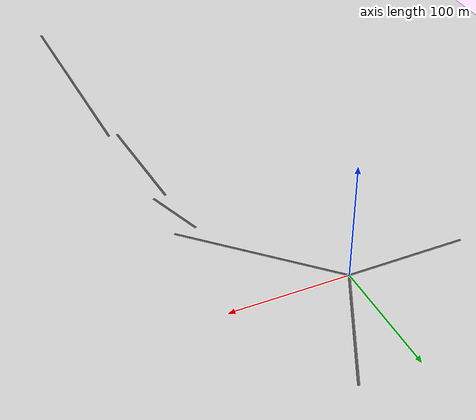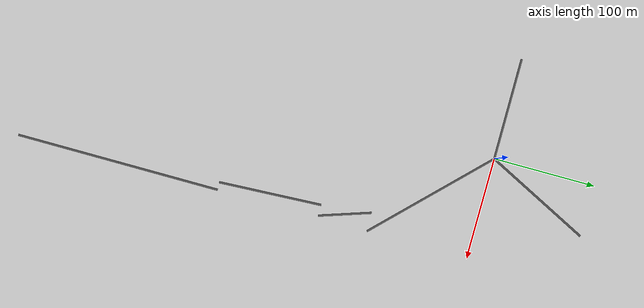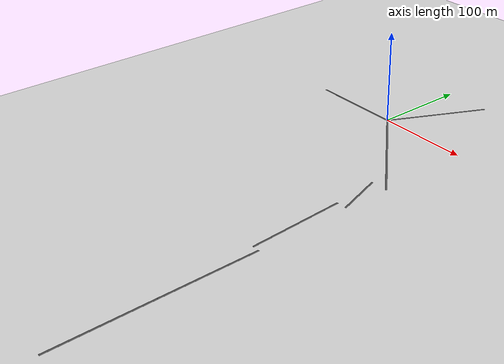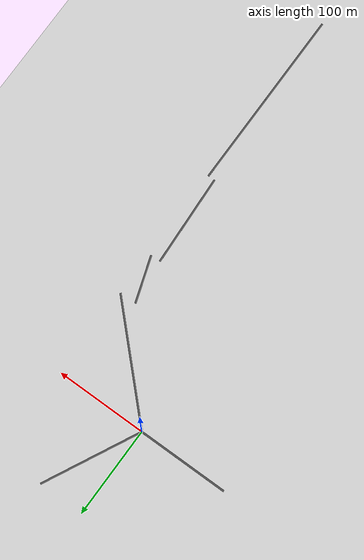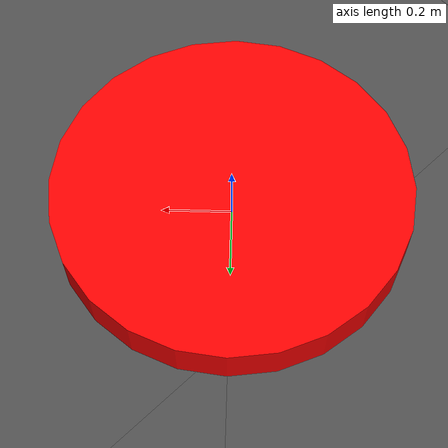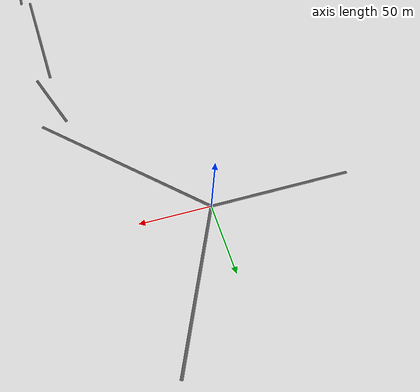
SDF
<?xml version="1.0"?>
<sdf version="1.6">
<world name="travelling_ethiopia">

<!-- PHYSICS -->

<physics type="ode">
  <real_time_update_rate>1000</real_time_update_rate>
  <max_step_size>0.001</max_step_size>
  <real_time_factor>1</real_time_factor>

  <max_contacts>20</max_contacts>
  <gravity>0 0 -9.81</gravity>

  <ode>
    <solver>
      <type>quick</type>
      <iters>150</iters>
      <sor>1.4</sor>
    </solver>

    <constraints>
      <cfm>1e-5</cfm>
      <erp>0.2</erp>
      <contact_max_correcting_vel>100</contact_max_correcting_vel>
      <contact_surface_layer>0.001</contact_surface_layer>
    </constraints>
  </ode>
</physics>

<!-- ENVIRONMENT -->

<light type="directional" name="sun">
  <cast_shadows>true</cast_shadows>
  <pose>0 0 10 0 0 0</pose>
  <diffuse>0.8 0.8 0.8 1</diffuse>
  <specular>0.2 0.2 0.2 1</specular>
  <direction>-0.5 0.5 -1</direction>
</light>

<model name="ground">
  <static>true</static>
  <link name="link">
    <collision name="collision">
      <geometry>
        <plane>
          <normal>0 0 1</normal>
          <size>1000 1000</size>
        </plane>
      </geometry>
    </collision>

    <visual name="visual">
      <geometry>
        <plane>
          <normal>0 0 1</normal>
          <size>1000 1000</size>
        </plane>
      </geometry>
    </visual>

  </link>
</model>

<scene>
  <ambient>0.6 0.6 0.6 1</ambient>
  <background>0.4 0.7 1.0 1</background>
  <shadows>true</shadows>
</scene>

<!-- CITIES (UNCHANGED — ALREADY GOOD) -->

<!-- Addis Ababa -->
<model name="Addis_Ababa">
  <static>true</static>
  <pose>0 0 0 0 0 0</pose>
  <link name="link">
    <visual name="visual">
      <geometry>
        <cylinder><radius>0.5</radius><length>0.3</length></cylinder>
      </geometry>
      <material><ambient>1 0 0 1</ambient></material>
    </visual>
    <collision name="collision">
      <geometry>
        <cylinder><radius>0.5</radius><length>0.3</length></cylinder>
      </geometry>
    </collision>
  </link>
</model>

<!-- Other cities remain same as yours
     (Adama, Ambo, Debre_Birhan, etc.)
-->

<!-- ROAD TEMPLATE (USED FOR ALL ROADS) -->

<!-- ================= ROAD 1 ================= -->
<model name="road_AA_Adama">
  <static>true</static>
  <pose>50 -50 0.01 0 0 -0.785</pose>
  <link name="link">

    <visual name="visual">
      <geometry>
        <box><size>142 2 0.02</size></box>
      </geometry>
      <material>
        <ambient>0.3 0.3 0.3 1</ambient>
      </material>
    </visual>

    <collision name="collision">
      <geometry>
        <box><size>142 2 0.02</size></box>
      </geometry>
      <surface>
        <friction>
          <ode>
            <mu>1.0</mu>
            <mu2>1.0</mu2>
          </ode>
        </friction>
      </surface>
    </collision>

  </link>
</model>

<!-- ================= ROAD 2 ================= -->
<model name="road_AA_Ambo">
  <static>true</static>
  <pose>-50 0 0.01 0 0 0</pose>
  <link name="link">

    <visual name="visual">
      <geometry>
        <box><size>100 2 0.02</size></box>
      </geometry>
      <material>
        <ambient>0.3 0.3 0.3 1</ambient>
      </material>
    </visual>

    <collision name="collision">
      <geometry>
        <box><size>100 2 0.02</size></box>
      </geometry>
      <surface>
        <friction>
          <ode>
            <mu>1.0</mu>
            <mu2>1.0</mu2>
          </ode>
        </friction>
      </surface>
    </collision>

  </link>
</model>

<!-- ================= ROAD 3 ================= -->
<model name="road_AA_DebreBirhan">
  <static>true</static>
  <pose>25 50 0.01 0 0 1.107</pose>
  <link name="link">

    <visual name="visual">
      <geometry>
        <box><size>112 2 0.02</size></box>
      </geometry>
      <material>
        <ambient>0.3 0.3 0.3 1</ambient>
      </material>
    </visual>

    <collision name="collision">
      <geometry>
        <box><size>112 2 0.02</size></box>
      </geometry>
      <surface>
        <friction>
          <ode>
            <mu>1.0</mu>
            <mu2>1.0</mu2>
          </ode>
        </friction>
      </surface>
    </collision>

  </link>
</model>

<!-- ================= ROAD 4 ================= -->
<model name="road_Adama_Batu">
  <static>true</static>
  <pose>90 -125 0.01 0 0 -1.249</pose>
  <link name="link">

    <visual name="visual">
      <geometry>
        <box><size>52 2 0.02</size></box>
      </geometry>
      <material>
        <ambient>0.3 0.3 0.3 1</ambient>
      </material>
    </visual>

    <collision name="collision">
      <geometry>
        <box><size>52 2 0.02</size></box>
      </geometry>
      <surface>
        <friction>
          <ode>
            <mu>1.0</mu>
            <mu2>1.0</mu2>
          </ode>
        </friction>
      </surface>
    </collision>

  </link>
</model>

<!-- ================= ROAD 5 ================= -->
<model name="road_Batu_Shash">
  <static>true</static>
  <pose>90 -200 0.01 0 0 -1.521</pose>
  <link name="link">

    <visual name="visual">
      <geometry>
        <box><size>101 2 0.02</size></box>
      </geometry>
      <material>
        <ambient>0.3 0.3 0.3 1</ambient>
      </material>
    </visual>

    <collision name="collision">
      <geometry>
        <box><size>101 2 0.02</size></box>
      </geometry>
      <surface>
        <friction>
          <ode>
            <mu>1.0</mu>
            <mu2>1.0</mu2>
          </ode>
        </friction>
      </surface>
    </collision>

  </link>
</model>

<!-- ================= ROAD 6 ================= -->
<model name="road_Shash_Hawassa">
  <static>true</static>
  <pose>100 -300 0.01 0 0 1.5708</pose>
  <link name="link">

    <visual name="visual">
      <geometry>
        <box><size>100 2 0.02</size></box>
      </geometry>
      <material>
        <ambient>0.3 0.3 0.3 1</ambient>
      </material>
    </visual>

    <collision name="collision">
      <geometry>
        <box><size>100 2 0.02</size></box>
      </geometry>
      <surface>
        <friction>
          <ode>
            <mu>1.0</mu>
            <mu2>1.0</mu2>
          </ode>
        </friction>
      </surface>
    </collision>

  </link>
</model>

<!-- ================= ROAD 7 ================= -->
<model name="road_Hawassa_Dilla">
  <static>true</static>
  <pose>100 -400 0.01 0 0 1.5708</pose>
  <link name="link">

    <visual name="visual">
      <geometry>
        <box><size>100 2 0.02</size></box>
      </geometry>
      <material>
        <ambient>0.3 0.3 0.3 1</ambient>
      </material>
    </visual>

    <collision name="collision">
      <geometry>
        <box><size>100 2 0.02</size></box>
      </geometry>
      <surface>
        <friction>
          <ode>
            <mu>1.0</mu>
            <mu2>1.0</mu2>
          </ode>
        </friction>
      </surface>
    </collision>

  </link>
</model>

</world>
</sdf>
